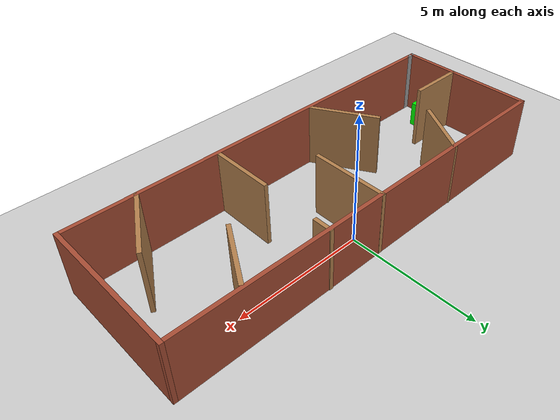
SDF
<sdf version="1.7">
 <world name="default">
  <light name="sun" type="directional">
   <pose>0 0 10 0 -0 0</pose>
   <diffuse>0.8 0.8 0.8 1</diffuse>
   <specular>0.2 0.2 0.2 1</specular>
   <attenuation>
    <range>1000</range>
    <constant>0.9</constant>
    <linear>0.01</linear>
    <quadratic>0.001</quadratic>
   </attenuation>
   <direction>-0.5 0.1 -0.9</direction>
   <spot><inner_angle>0</inner_angle><outer_angle>0</outer_angle><falloff>0</falloff></spot>
  </light>
  <model name="ground_plane">
   <static>1</static>
   <link name="link">
    <collision name="collision">
     <geometry><plane><normal>0 0 1</normal><size>100 100</size></plane></geometry>
     <surface>
      <contact><collide_bitmask>65535</collide_bitmask></contact>
      <friction><ode><mu>100</mu><mu2>50</mu2></ode></friction>
     </surface>
    </collision>
    <visual name="visual">
     <cast_shadows>0</cast_shadows>
     <geometry><plane><normal>0 0 1</normal><size>100 100</size></plane></geometry>
     <material>
      <script><uri>file://media/materials/scripts/gazebo.material</uri><name>Gazebo/Grey</name></script>
     </material>
    </visual>
   </link>
  </model>
  <gravity>0 0 -9.8</gravity>
  <magnetic_field>6e-06 2.3e-05 -4.2e-05</magnetic_field>
  <atmosphere type="adiabatic"/>
  <physics type="ode">
   <max_step_size>0.001</max_step_size>
   <real_time_factor>1</real_time_factor>
   <real_time_update_rate>1000</real_time_update_rate>
  </physics>
  <scene><ambient>0.4 0.4 0.4 1</ambient><background>0.7 0.7 0.7 1</background><shadows>1</shadows></scene>
  <spherical_coordinates>
   <surface_model>EARTH_WGS84</surface_model>
   <latitude_deg>0</latitude_deg>
   <longitude_deg>0</longitude_deg>
   <elevation>0</elevation>
   <heading_deg>0</heading_deg>
  </spherical_coordinates>
  <model name="map6">
   <pose>-0.08861 -1.70271 0 0 -0 0</pose>
   <link name="Wall_10">
    <collision name="Wall_10_Collision">
     <geometry><box><size>0.4 0.15 2.5</size></box></geometry>
     <pose>0 0 1.25 0 -0 0</pose>
    </collision>
    <visual name="Wall_10_Visual">
     <pose>0 0 1.25 0 -0 0</pose>
     <geometry><box><size>0.4 0.15 2.5</size></box></geometry>
     <material>
      <script><uri>file://media/materials/scripts/gazebo.material</uri><name>Gazebo/Grey</name></script>
      <ambient>1 1 1 1</ambient>
     </material>
     <meta><layer>0</layer></meta>
    </visual>
    <pose>-7.92439 -2.69229 0 0 -0 0</pose>
   </link>
   <link name="Wall_12">
    <collision name="Wall_12_Collision">
     <geometry><box><size>2.25 0.15 2.5</size></box></geometry>
     <pose>0 0 1.25 0 -0 0</pose>
    </collision>
    <visual name="Wall_12_Visual">
     <pose>0 0 1.25 0 -0 0</pose>
     <geometry><box><size>2.25 0.15 2.5</size></box></geometry>
     <material>
      <script><uri>file://media/materials/scripts/gazebo.material</uri><name>Gazebo/Wood</name></script>
      <ambient>1 1 1 1</ambient>
     </material>
     <meta><layer>0</layer></meta>
    </visual>
    <pose>-7.00061 -0.553123 0 0 -0 0</pose>
   </link>
   <link name="Wall_14">
    <collision name="Wall_14_Collision">
     <geometry><box><size>2.5 0.15 2.5</size></box></geometry>
     <pose>0 0 1.25 0 -0 0</pose>
    </collision>
    <visual name="Wall_14_Visual">
     <pose>0 0 1.25 0 -0 0</pose>
     <geometry><box><size>2.5 0.15 2.5</size></box></geometry>
     <material>
      <script><uri>file://media/materials/scripts/gazebo.material</uri><name>Gazebo/Wood</name></script>
      <ambient>1 1 1 1</ambient>
     </material>
     <meta><layer>0</layer></meta>
    </visual>
    <pose>-4.39415 1.64747 0 0 -0 -2.0944</pose>
   </link>
   <link name="Wall_16">
    <collision name="Wall_16_Collision">
     <geometry><box><size>2.75 0.15 2.5</size></box></geometry>
     <pose>0 0 1.25 0 -0 0</pose>
    </collision>
    <visual name="Wall_16_Visual">
     <pose>0 0 1.25 0 -0 0</pose>
     <geometry><box><size>2.75 0.15 2.5</size></box></geometry>
     <material>
      <script><uri>file://media/materials/scripts/gazebo.material</uri><name>Gazebo/Wood</name></script>
      <ambient>1 1 1 1</ambient>
     </material>
     <meta><layer>0</layer></meta>
    </visual>
    <pose>-2.64643 -1.5191 0 0 -0 2.0944</pose>
   </link>
   <link name="Wall_18">
    <collision name="Wall_18_Collision">
     <geometry><box><size>3 0.15 2.5</size></box></geometry>
     <pose>0 0 1.25 0 -0 0</pose>
    </collision>
    <visual name="Wall_18_Visual">
     <pose>0 0 1.25 0 -0 0</pose>
     <geometry><box><size>3 0.15 2.5</size></box></geometry>
     <material>
      <script><uri>file://media/materials/scripts/gazebo.material</uri><name>Gazebo/Wood</name></script>
      <ambient>1 1 1 1</ambient>
     </material>
     <meta><layer>0</layer></meta>
    </visual>
    <pose>-0.065523 1.24005 0 0 -0 -1.5708</pose>
   </link>
   <link name="Wall_20">
    <collision name="Wall_20_Collision">
     <geometry><box><size>2.5 0.15 2.5</size></box></geometry>
     <pose>0 0 1.25 0 -0 0</pose>
    </collision>
    <visual name="Wall_20_Visual">
     <pose>0 0 1.25 0 -0 0</pose>
     <geometry><box><size>2.5 0.15 2.5</size></box></geometry>
     <material>
      <script><uri>file://media/materials/scripts/gazebo.material</uri><name>Gazebo/Wood</name></script>
      <ambient>1 1 1 1</ambient>
     </material>
     <meta><layer>0</layer></meta>
    </visual>
    <pose>2.24754 -1.44982 0 0 -0 1.5708</pose>
   </link>
   <link name="Wall_22">
    <collision name="Wall_22_Collision">
     <geometry><box><size>2.5 0.15 2.5</size></box></geometry>
     <pose>0 0 1.25 0 -0 0</pose>
    </collision>
    <visual name="Wall_22_Visual">
     <pose>0 0 1.25 0 -0 0</pose>
     <geometry><box><size>2.5 0.15 2.5</size></box></geometry>
     <material>
      <script><uri>file://media/materials/scripts/gazebo.material</uri><name>Gazebo/Wood</name></script>
      <ambient>1 1 1 1</ambient>
     </material>
     <meta><layer>0</layer></meta>
    </visual>
    <pose>4.8581 1.50667 0 0 -0 -2.0944</pose>
   </link>
   <link name="Wall_24">
    <collision name="Wall_24_Collision">
     <geometry><box><size>0.75 0.15 2.5</size></box></geometry>
     <pose>0 0 1.25 0 -0 0</pose>
    </collision>
    <visual name="Wall_24_Visual">
     <pose>0 0 1.25 0 -0 0</pose>
     <geometry><box><size>0.75 0.15 2.5</size></box></geometry>
     <material>
      <script><uri>file://media/materials/scripts/gazebo.material</uri><name>Gazebo/Wood</name></script>
      <ambient>1 1 1 1</ambient>
     </material>
     <meta><layer>0</layer></meta>
    </visual>
    <pose>2.24754 2.38516 0 0 -0 -1.5708</pose>
   </link>
   <link name="Wall_28">
    <collision name="Wall_28_Collision">
     <geometry><box><size>2.75 0.15 2.5</size></box></geometry>
     <pose>0 0 1.25 0 -0 0</pose>
    </collision>
    <visual name="Wall_28_Visual">
     <pose>0 0 1.25 0 -0 0</pose>
     <geometry><box><size>2.75 0.15 2.5</size></box></geometry>
     <material>
      <script><uri>file://media/materials/scripts/gazebo.material</uri><name>Gazebo/Wood</name></script>
      <ambient>1 1 1 1</ambient>
     </material>
     <meta><layer>0</layer></meta>
    </visual>
    <pose>6.07548 -1.53921 0 0 -0 1.0472</pose>
   </link>
   <link name="Wall_6">
    <collision name="Wall_6_Collision">
     <geometry><box><size>16 0.15 2.5</size></box></geometry>
     <pose>0 0 1.25 0 -0 0</pose>
    </collision>
    <visual name="Wall_6_Visual">
     <pose>0 0 1.25 0 -0 0</pose>
     <geometry><box><size>16 0.15 2.5</size></box></geometry>
     <material>
      <script><uri>file://media/materials/scripts/gazebo.material</uri><name>Gazebo/Bricks</name></script>
      <ambient>1 1 1 1</ambient>
     </material>
     <meta><layer>0</layer></meta>
    </visual>
    <pose>0.12561 -2.69229 0 0 -0 0</pose>
   </link>
   <link name="Wall_7">
    <collision name="Wall_7_Collision">
     <geometry><box><size>5.5 0.15 2.5</size></box></geometry>
     <pose>0 0 1.25 0 -0 0</pose>
    </collision>
    <visual name="Wall_7_Visual">
     <pose>0 0 1.25 0 -0 0</pose>
     <geometry><box><size>5.5 0.15 2.5</size></box></geometry>
     <material>
      <script><uri>file://media/materials/scripts/gazebo.material</uri><name>Gazebo/Bricks</name></script>
      <ambient>1 1 1 1</ambient>
     </material>
     <meta><layer>0</layer></meta>
    </visual>
    <pose>8.05061 -0.017292 0 0 -0 1.5708</pose>
   </link>
   <link name="Wall_8">
    <collision name="Wall_8_Collision">
     <geometry><box><size>16.25 0.15 2.5</size></box></geometry>
     <pose>0 0 1.25 0 -0 0</pose>
    </collision>
    <visual name="Wall_8_Visual">
     <pose>0 0 1.25 0 -0 0</pose>
     <geometry><box><size>16.25 0.15 2.5</size></box></geometry>
     <material>
      <script><uri>file://media/materials/scripts/gazebo.material</uri><name>Gazebo/Bricks</name></script>
      <ambient>1 1 1 1</ambient>
     </material>
     <meta><layer>0</layer></meta>
    </visual>
    <pose>0.00061 2.65771 0 0 -0 3.14159</pose>
   </link>
   <link name="Wall_9">
    <collision name="Wall_9_Collision">
     <geometry><box><size>5.5 0.15 2.5</size></box></geometry>
     <pose>0 0 1.25 0 -0 0</pose>
    </collision>
    <visual name="Wall_9_Visual">
     <pose>0 0 1.25 0 -0 0</pose>
     <geometry><box><size>5.5 0.15 2.5</size></box></geometry>
     <material>
      <script><uri>file://media/materials/scripts/gazebo.material</uri><name>Gazebo/Bricks</name></script>
      <ambient>1 1 1 1</ambient>
     </material>
     <meta><layer>0</layer></meta>
    </visual>
    <pose>-8.04939 -0.017292 0 0 -0 -1.5708</pose>
   </link>
   <static>1</static>
  </model>
  <model name="unit_box">
   <link name="link">
    <inertial>
     <mass>1</mass>
     <inertia>
      <ixx>0.166667</ixx>
      <ixy>0</ixy>
      <ixz>0</ixz>
      <iyy>0.166667</iyy>
      <iyz>0</iyz>
      <izz>0.166667</izz>
     </inertia>
    </inertial>
    <visual name="visual">
     <geometry><box><size>1 1 1</size></box></geometry>
     <material>
      <script><name>Gazebo/Grey</name><uri>file://media/materials/scripts/gazebo.material</uri></script>
      <shader type="pixel"><normal_map>__default__</normal_map></shader>
      <ambient>0 1 0 1</ambient>
      <diffuse>0.7 0.7 0.7 1</diffuse>
      <specular>0.01 0.01 0.01 1</specular>
      <emissive>0 0 0 1</emissive>
     </material>
    </visual>
    <collision name="collision">
     <geometry><box><size>1 1 1</size></box></geometry>
     <surface>
      <friction>
       <ode><mu>1</mu><mu2>1</mu2><fdir1>0 0 0</fdir1><slip1>0</slip1><slip2>0</slip2></ode>
       <torsional>
        <coefficient>1</coefficient>
        <patch_radius>0</patch_radius>
        <surface_radius>0</surface_radius>
        <use_patch_radius>1</use_patch_radius>
        <ode><slip>0</slip></ode>
       </torsional>
      </friction>
      <bounce><restitution_coefficient>0</restitution_coefficient><threshold>1e+06</threshold></bounce>
      <contact>
       <collide_without_contact>0</collide_without_contact>
       <collide_without_contact_bitmask>1</collide_without_contact_bitmask>
       <collide_bitmask>1</collide_bitmask>
       <ode>
        <soft_cfm>0</soft_cfm>
        <soft_erp>0.2</soft_erp>
        <kp>1e+13</kp>
        <kd>1</kd>
        <max_vel>0.01</max_vel>
        <min_depth>0</min_depth>
       </ode>
       <bullet>
        <split_impulse>1</split_impulse>
        <split_impulse_penetration_threshold>-0.01</split_impulse_penetration_threshold>
        <soft_cfm>0</soft_cfm>
        <soft_erp>0.2</soft_erp>
        <kp>1e+13</kp>
        <kd>1</kd>
       </bullet>
      </contact>
     </surface>
    </collision>
   </link>
   <static>0</static>
   <pose>-7.55677 -2.83083 0.5 0 -0 0</pose>
  </model>
 </world>
</sdf>
